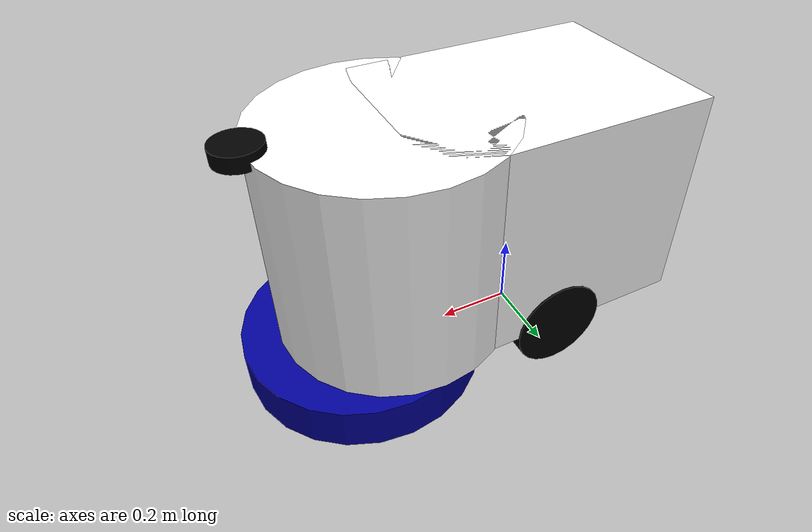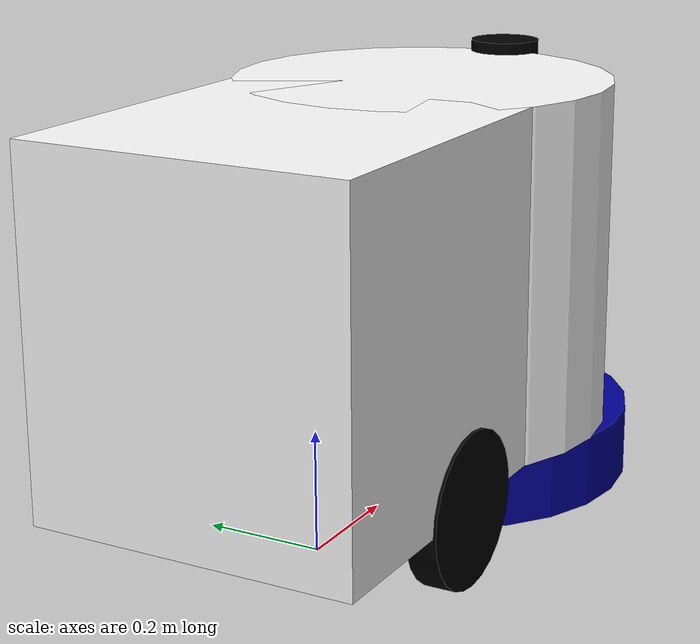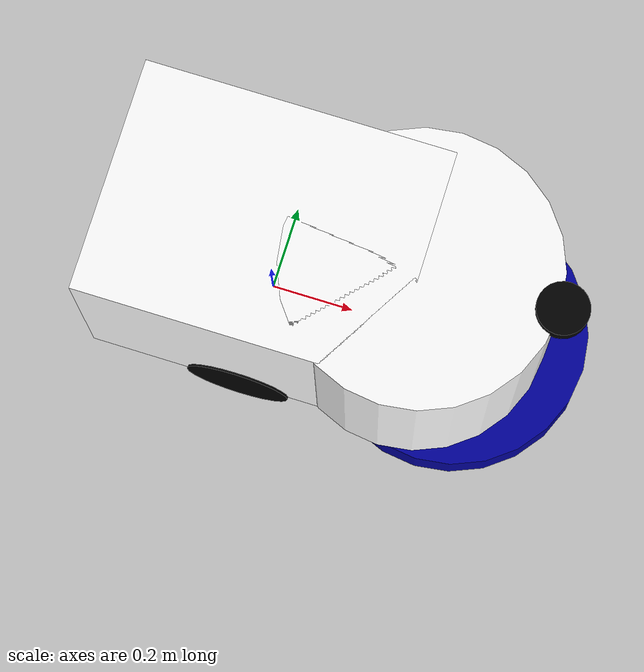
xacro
<?xml version="1.0"?>
<robot name="cleaner" xmlns:xacro="http://www.ros.org/wiki/xacro">
    <xacro:include filename="common.xacro"/>
    <xacro:include filename="mobile_base.xacro"/>

    <!-- İkisi de çalışıyor, ros2_control gerçek yazılıma daha
    yakın, diff drive ise gazebo ile daha uyumlu -->
    <xacro:include filename="ros2_control_new.xacro"/>

</robot>

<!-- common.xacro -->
<robot xmlns:xacro="http://www.ros.org/wiki/xacro">
    <material name="red"> <color rgba="0.6 0 0 1"/> </material>
    <material name="green"> <color rgba="0 0.6 0 1"/> </material>
    <material name="blue"> <color rgba="0 0 0.6 1"/> </material>
    <material name="gray"> <color rgba="0.6 0.6 0.6 1"/> </material>
    <material name="black"> <color rgba="0 0 0 1"/> </material>
    <material name="white"> <color rgba="1 1 1 1"/> </material>

    <xacro:macro name="box_inertia" params="m x y z xyz rpy">
        <inertial>
            <origin xyz="${xyz}" rpy="${rpy}"/>
            <mass value="${m}"/>
            <inertia ixx="${m*(y*y+z*z)/12}" ixy="0" ixz="0"
                      iyy="${m*(x*x+z*z)/12}" iyz="0"
                      izz="${m*(x*x+y*y)/12}"/>
        </inertial>
    </xacro:macro>

    <xacro:macro name="cylinder_inertia" params="m r l xyz rpy">
        <inertial>
            <origin xyz="${xyz}" rpy="${rpy}"/>
            <mass value="${m}"/>
            <inertia ixx="${m*(3*r*r+l*l)/12}" ixy="0" ixz="0"
                      iyy="${m*(3*r*r+l*l)/12}" iyz="0"
                      izz="${m*r*r/2}"/>
        </inertial>
    </xacro:macro>

</robot>

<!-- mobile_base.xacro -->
<robot xmlns:xacro="http://www.ros.org/wiki/xacro">
  <link name="odom"/>
  <joint name="odom_link" type="fixed">
    <parent link="odom" />
    <child link="base_footprint" />
    <origin xyz="0.14 0 0" rpy="0 0 0"/>
  </joint>

  <link name="base_footprint" />

  <xacro:property name="base_z" value="0.58" />
  <link name="base_link">
    <visual>
      <geometry>
        <box size="0.72 0.54  ${base_z}" />
      </geometry>
      <material name="white" />
      <origin xyz="0 0 ${base_z/2}" rpy="0 0 0" />
    </visual>
    <collision>
      <geometry>
        <box size="0.72 0.54  ${base_z}" />
      </geometry>
      <origin xyz="0 0 ${base_z/2}" rpy="0 0 0" />
    </collision>
    <xacro:box_inertia m="16." x="0.72" y="0.54" z="${base_z}" xyz="0 0 ${base_z/2}" rpy="0 0 0" />
  </link>
  <joint name="base_footprint_joint" type="fixed">
    <parent link="base_footprint" />
    <child link="base_link" />
    <origin xyz="-0.14 0 0.125" rpy="0 0 0" />
  </joint>

  <link name="bno055" />
  <joint name="imu_joint" type="fixed">
    <parent link="base_link" />  <!-- Attach to the appropriate link -->
    <child link="bno055" />
    <origin xyz="-0.36 0 0.335" rpy="0 0 0" />  <!-- Adjust position -->
  </joint>

  <link name="base_front">
    <visual>
      <geometry>
        <cylinder radius="0.316" length="${base_z}" />
      </geometry>
      <material name="white" />
      <origin xyz="0 0 ${base_z/2}" rpy="0 0 0" />
    </visual>
    <collision>
      <geometry>
        <cylinder radius="0.316" length="${base_z}" />
      </geometry>
      <origin xyz="0 0 ${base_z/2}" rpy="0 0 0" />
    </collision>
    <xacro:cylinder_inertia m="10." r="0.316" l="${base_z}" xyz="0 0 ${base_z/2}" rpy="0 0 0" />
  </link>
  <joint name="base_front_joint" type="fixed">
    <parent link="base_link" />
    <child link="base_front" />
    <origin xyz="0.36 0 0" rpy="0 0 0" />
  </joint>

  <link name="left_wheel">
    <visual>
      <geometry>
        <cylinder radius="0.125" length="0.05" />
      </geometry>
      <material name="black" />
      <origin xyz="0 0 0" rpy="0 0 0" />
    </visual>
    <collision>
      <geometry>
        <cylinder radius="0.125" length="0.05" />
      </geometry>
      <origin xyz="0 0 0" rpy="0 0 0" />
    </collision>
    <xacro:cylinder_inertia m="0.5" r="0.125" l="0.05" xyz="0 0 0" rpy="0 0 0" />
  </link>
  <joint name="left_wheel_joint" type="continuous">
    <parent link="base_link" />
    <child link="left_wheel" />
    <origin xyz="0 0.25 0" rpy="1.57 0 3.14" />
    <axis xyz="0 0 1" />
  </joint>

  <link name="right_wheel">
    <visual>
      <geometry>
        <cylinder radius="0.125" length="0.05" />
      </geometry>
      <material name="black" />
      <origin xyz="0 0 0" rpy="0 0 0" />
    </visual>
    <collision>
      <geometry>
        <cylinder radius="0.125" length="0.05" />
      </geometry>
      <origin xyz="0 0 0" rpy="0 0 0" />
    </collision>
    <xacro:cylinder_inertia m="0.5" r="0.125" l="0.05" xyz="0 0 0" rpy="0 0 0" />
  </link>
  <joint name="right_wheel_joint" type="continuous">
    <parent link="base_link" />
    <child link="right_wheel" />
    <origin xyz="0 -0.25 0" rpy="1.57 0 3.14" />
    <axis xyz="0 0 1" />
  </joint>

  <link name="brush">
    <visual>
      <geometry>
        <cylinder radius="0.32" length="0.12" />
      </geometry>
      <material name="blue" />
      <origin xyz="0 0 0.06" rpy="0 0 0" />
    </visual>
    <collision>
      <geometry>
        <cylinder radius="0.32" length="0.12" />
      </geometry>
      <origin xyz="0 0 0.06" rpy="0 0 0" />
    </collision>
    <xacro:cylinder_inertia m="3" r="0.32" l="0.12" xyz="0 0 0.06" rpy="0 0 0" />
  </link>
  <joint name="brush_joint" type="fixed">
    <parent link="base_front" />
    <child link="brush" />
    <origin xyz="0.095 0 -0.125" rpy="0 0 0" />
  </joint>

  <xacro:property name="scan_l" value="0.04" />
  <xacro:property name="scan_r" value="0.06" />
  <link name="base_scan">
    <visual>
      <geometry>
        <cylinder radius="${scan_r}" length="${scan_l}" />
      </geometry>
      <material name="black" />
      <origin xyz="0 0 0" rpy="0 0 0" />
    </visual>
    <collision>
      <geometry>
        <cylinder radius="${scan_r}" length="${scan_l}" />
      </geometry>
      <origin xyz="0 0 0" rpy="0 0 0" />
    </collision>
    <xacro:cylinder_inertia m="0.4" r="${scan_r}" l="${scan_l}" xyz="0 0 0" rpy="0 0 0" />
  </link>

  <joint name="scan_joint" type="fixed">
    <parent link="base_link" />
    <child link="base_scan" />
    <origin xyz="0.680 0 0.58" rpy="0 0 -1.84847821" />
  </joint>

</robot>
